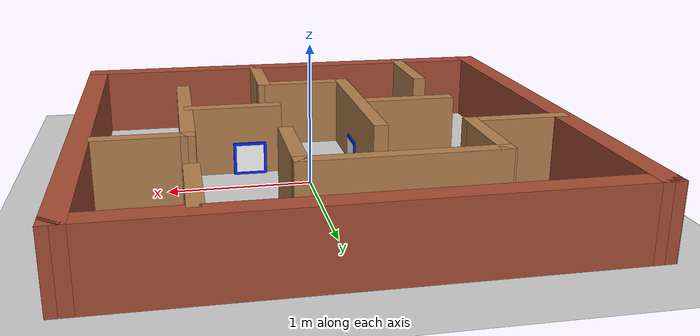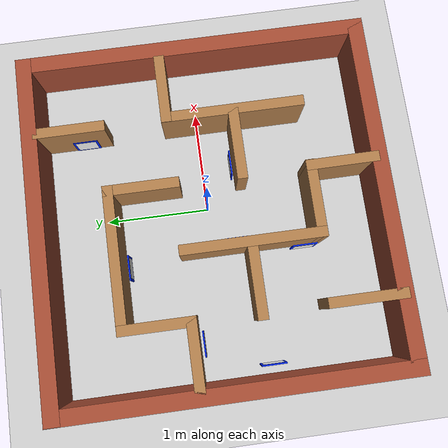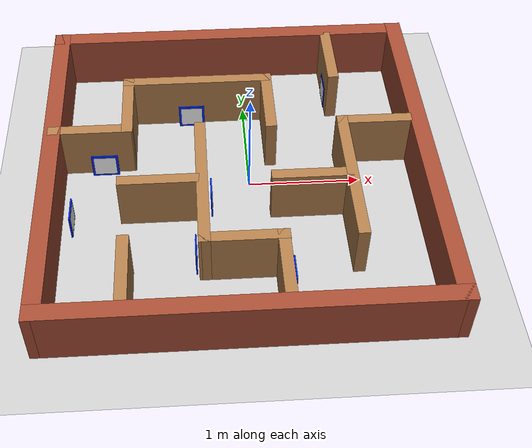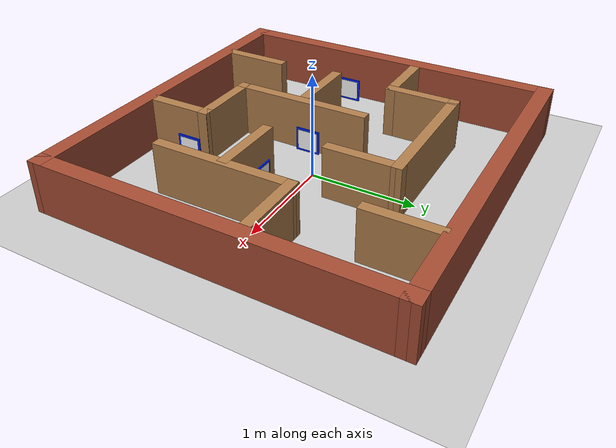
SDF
<sdf version='1.7'>
  <world name='default'>
    <plugin
      filename="gz-sim-physics-system"
      name="gz::sim::systems::Physics">
    </plugin>
    <plugin
      filename="gz-sim-user-commands-system"
      name="gz::sim::systems::UserCommands">
    </plugin>
    <plugin
      filename="gz-sim-scene-broadcaster-system"
      name="gz::sim::systems::SceneBroadcaster">
    </plugin>
    <plugin
      filename="gz-sim-sensors-system"
      name="gz::sim::systems::Sensors">
      <render_engine>ogre2</render_engine>
    </plugin>
    <model name='ground_plane'>
      <static>1</static>
      <pose>0.000 0.000 0.000 0.00 0.00 0.00</pose>
      <link name='link'>
        <collision name='collision'>
          <geometry>
            <plane>
              <normal>0 0 1</normal>
              <size>100 100</size>
            </plane>
          </geometry>
          <surface>
            <friction>
              <ode>
                <mu>100</mu>
                <mu2>50</mu2>
              </ode>
              <torsional>
                <ode/>
              </torsional>
            </friction>
            <contact>
              <ode/>
            </contact>
            <bounce/>
          </surface>
          <max_contacts>10</max_contacts>
        </collision>
        <visual name='visual'>
          <cast_shadows>0</cast_shadows>
          <geometry>
            <plane>
              <normal>0 0 1</normal>
              <size>100 100</size>
            </plane>
          </geometry>
          <material>
            <script>
              <uri>file://media/materials/scripts/gazebo.material</uri>
              <name>Gazebo/Grey</name>
            </script>
          </material>
        </visual>
        <self_collide>0</self_collide>
        <enable_wind>0</enable_wind>
        <kinematic>0</kinematic>
      </link>
    </model>
    <light name='sun' type='directional'>
      <cast_shadows>1</cast_shadows>
      <pose>0 0 10 0 -0 0</pose>
      <diffuse>0.8 0.8 0.8 1</diffuse>
      <specular>0.2 0.2 0.2 1</specular>
      <attenuation>
        <range>1000</range>
        <constant>0.9</constant>
        <linear>0.01</linear>
        <quadratic>0.001</quadratic>
      </attenuation>
      <direction>-0.5 0.1 -0.9</direction>
      <spot>
        <inner_angle>0</inner_angle>
        <outer_angle>0</outer_angle>
        <falloff>0</falloff>
      </spot>
    </light>
    <scene>
      <shadows>0</shadows>
      <ambient>0.4 0.4 0.4 1</ambient>
      <background>0.7 0.7 0.7 1</background>
    </scene>
    <gui fullscreen='0'>
      <camera name='user_camera'>
        <pose>-0.105924 0.043074 8.14068 0 1.5138 0.009599</pose>
        <view_controller>orbit</view_controller>
        <projection_type>perspective</projection_type>
      </camera>
    </gui>
    <physics type='ode'>
      <real_time_update_rate>1000</real_time_update_rate>
      <max_step_size>0.001</max_step_size>
      <real_time_factor>1</real_time_factor>
      <ode>
        <solver>
          <type>quick</type>
          <iters>150</iters>
          <precon_iters>0</precon_iters>
          <sor>1.4</sor>
          <use_dynamic_moi_rescaling>1</use_dynamic_moi_rescaling>
        </solver>
        <constraints>
          <cfm>1e-05</cfm>
          <erp>0.2</erp>
          <contact_max_correcting_vel>2000</contact_max_correcting_vel>
          <contact_surface_layer>0.01</contact_surface_layer>
        </constraints>
      </ode>
    </physics>
    <gravity>0 0 -9.8</gravity>
    <magnetic_field>6e-06 2.3e-05 -4.2e-05</magnetic_field>
    <atmosphere type='adiabatic'/>
    <audio>
      <device>default</device>
    </audio>
    <wind/>
    <spherical_coordinates>
      <surface_model>EARTH_WGS84</surface_model>
      <latitude_deg>0</latitude_deg>
      <longitude_deg>0</longitude_deg>
      <elevation>0</elevation>
      <heading_deg>0</heading_deg>
    </spherical_coordinates>
    <model name='mapcorreg'>
      <model name='newmap'>
        <pose>0 0 0 0 -0 0</pose>
        <link name='Wall_11'>
          <collision name='Wall_11_Collision'>
            <geometry>
              <box>
                <size>3.40462 0.15 0.5</size>
              </box>
            </geometry>
            <pose>0 0 0.25 0 -0 0</pose>
            <max_contacts>10</max_contacts>
            <surface>
              <contact>
                <ode/>
              </contact>
              <bounce/>
              <friction>
                <torsional>
                  <ode/>
                </torsional>
                <ode/>
              </friction>
            </surface>
          </collision>
          <visual name='Wall_11_Visual'>
            <pose>0 0 0.25 0 -0 0</pose>
            <geometry>
              <box>
                <size>3.40462 0.15 0.5</size>
              </box>
            </geometry>
            <material>
              <script>
                <uri>file://media/materials/scripts/gazebo.material</uri>
                <name>Gazebo/Bricks</name>
              </script>
              <ambient>1 1 1 1</ambient>
            </material>
            <meta>
              <layer>0</layer>
            </meta>
          </visual>
          <pose>-1.64015 -0.000466 0 0 -0 -1.56953</pose>
          <self_collide>0</self_collide>
          <enable_wind>0</enable_wind>
          <kinematic>0</kinematic>
        </link>
        <link name='Wall_14'>
          <collision name='Wall_14_Collision'>
            <geometry>
              <box>
                <size>3.40557 0.15 0.5</size>
              </box>
            </geometry>
            <pose>0 0 0.25 0 -0 0</pose>
            <max_contacts>10</max_contacts>
            <surface>
              <contact>
                <ode/>
              </contact>
              <bounce/>
              <friction>
                <torsional>
                  <ode/>
                </torsional>
                <ode/>
              </friction>
            </surface>
          </collision>
          <visual name='Wall_14_Visual'>
            <pose>0 0 0.25 0 -0 0</pose>
            <geometry>
              <box>
                <size>3.40557 0.15 0.5</size>
              </box>
            </geometry>
            <material>
              <script>
                <uri>file://media/materials/scripts/gazebo.material</uri>
                <name>Gazebo/Bricks</name>
              </script>
              <ambient>1 1 1 1</ambient>
            </material>
            <meta>
              <layer>0</layer>
            </meta>
          </visual>
          <pose>1.64026 -0 0 0 -0 1.5696</pose>
          <self_collide>0</self_collide>
          <enable_wind>0</enable_wind>
          <kinematic>0</kinematic>
        </link>
        <link name='Wall_15'>
          <collision name='Wall_15_Collision'>
            <geometry>
              <box>
                <size>3.4301 0.15 0.5</size>
              </box>
            </geometry>
            <pose>0 0 0.25 0 -0 0</pose>
            <max_contacts>10</max_contacts>
            <surface>
              <contact>
                <ode/>
              </contact>
              <bounce/>
              <friction>
                <torsional>
                  <ode/>
                </torsional>
                <ode/>
              </friction>
            </surface>
          </collision>
          <visual name='Wall_15_Visual'>
            <pose>0 0 0.25 0 -0 0</pose>
            <geometry>
              <box>
                <size>3.4301 0.15 0.5</size>
              </box>
            </geometry>
            <material>
              <script>
                <uri>file://media/materials/scripts/gazebo.material</uri>
                <name>Gazebo/Bricks</name>
              </script>
              <ambient>1 1 1 1</ambient>
            </material>
            <meta>
              <layer>0</layer>
            </meta>
          </visual>
          <pose>0.002164 1.62731 0 0 -0 -3.14131</pose>
          <self_collide>0</self_collide>
          <enable_wind>0</enable_wind>
          <kinematic>0</kinematic>
        </link>
        <link name='Wall_17'>
          <collision name='Wall_17_Collision'>
            <geometry>
              <box>
                <size>0.752829 0.1 0.5</size>
              </box>
            </geometry>
            <pose>0 0 0.25 0 -0 0</pose>
            <max_contacts>10</max_contacts>
            <surface>
              <contact>
                <ode/>
              </contact>
              <bounce/>
              <friction>
                <torsional>
                  <ode/>
                </torsional>
                <ode/>
              </friction>
            </surface>
          </collision>
          <visual name='Wall_17_Visual'>
            <pose>0 0 0.25 0 -0 0</pose>
            <geometry>
              <box>
                <size>0.752829 0.1 0.5</size>
              </box>
            </geometry>
            <material>
              <script>
                <uri>file://media/materials/scripts/gazebo.material</uri>
                <name>Gazebo/Wood</name>
              </script>
              <ambient>1 1 1 1</ambient>
            </material>
            <meta>
              <layer>0</layer>
            </meta>
          </visual>
          <pose>-1.30426 0.31789 0 0 -0 0.000206</pose>
          <self_collide>0</self_collide>
          <enable_wind>0</enable_wind>
          <kinematic>0</kinematic>
        </link>
        <link name='Wall_19'>
          <collision name='Wall_19_Collision'>
            <geometry>
              <box>
                <size>0.725857 0.1 0.5</size>
              </box>
            </geometry>
            <pose>0 0 0.25 0 -0 0</pose>
            <max_contacts>10</max_contacts>
            <surface>
              <contact>
                <ode/>
              </contact>
              <bounce/>
              <friction>
                <torsional>
                  <ode/>
                </torsional>
                <ode/>
              </friction>
            </surface>
          </collision>
          <visual name='Wall_19_Visual'>
            <pose>0 0 0.25 0 -0 0</pose>
            <geometry>
              <box>
                <size>0.725857 0.1 0.5</size>
              </box>
            </geometry>
            <material>
              <script>
                <uri>file://media/materials/scripts/gazebo.material</uri>
                <name>Gazebo/Wood</name>
              </script>
              <ambient>1 1 1 1</ambient>
            </material>
            <meta>
              <layer>0</layer>
            </meta>
          </visual>
          <pose>-0.977516 0.630957 0 0 -0 1.5692</pose>
          <self_collide>0</self_collide>
          <enable_wind>0</enable_wind>
          <kinematic>0</kinematic>
        </link>
        <link name='Wall_21'>
          <collision name='Wall_21_Collision'>
            <geometry>
              <box>
                <size>1.38594 0.1 0.5</size>
              </box>
            </geometry>
            <pose>0 0 0.25 0 -0 0</pose>
            <max_contacts>10</max_contacts>
            <surface>
              <contact>
                <ode/>
              </contact>
              <bounce/>
              <friction>
                <torsional>
                  <ode/>
                </torsional>
                <ode/>
              </friction>
            </surface>
          </collision>
          <visual name='Wall_21_Visual'>
            <pose>0 0 0.25 0 -0 0</pose>
            <geometry>
              <box>
                <size>1.38594 0.1 0.5</size>
              </box>
            </geometry>
            <material>
              <script>
                <uri>file://media/materials/scripts/gazebo.material</uri>
                <name>Gazebo/Wood</name>
              </script>
              <ambient>1 1 1 1</ambient>
            </material>
            <meta>
              <layer>0</layer>
            </meta>
          </visual>
          <pose>-0.334045 0.944184 0 0 -0 0.000352</pose>
          <self_collide>0</self_collide>
          <enable_wind>0</enable_wind>
          <kinematic>0</kinematic>
        </link>
        <link name='Wall_22'>
          <collision name='Wall_22_Collision'>
            <geometry>
              <box>
                <size>0.725455 0.1 0.5</size>
              </box>
            </geometry>
            <pose>0 0 0.25 0 -0 0</pose>
            <max_contacts>10</max_contacts>
            <surface>
              <contact>
                <ode/>
              </contact>
              <bounce/>
              <friction>
                <torsional>
                  <ode/>
                </torsional>
                <ode/>
              </friction>
            </surface>
          </collision>
          <visual name='Wall_22_Visual'>
            <pose>0 0 0.25 0 -0 0</pose>
            <geometry>
              <box>
                <size>0.725455 0.1 0.5</size>
              </box>
            </geometry>
            <material>
              <script>
                <uri>file://media/materials/scripts/gazebo.material</uri>
                <name>Gazebo/Wood</name>
              </script>
              <ambient>1 1 1 1</ambient>
            </material>
            <meta>
              <layer>0</layer>
            </meta>
          </visual>
          <pose>0.308926 0.631721 0 0 -0 -1.5708</pose>
          <self_collide>0</self_collide>
          <enable_wind>0</enable_wind>
          <kinematic>0</kinematic>
        </link>
        <link name='Wall_24'>
          <collision name='Wall_24_Collision'>
            <geometry>
              <box>
                <size>0.687721 0.1 0.5</size>
              </box>
            </geometry>
            <pose>0 0 0.25 0 -0 0</pose>
            <max_contacts>10</max_contacts>
            <surface>
              <contact>
                <ode/>
              </contact>
              <bounce/>
              <friction>
                <torsional>
                  <ode/>
                </torsional>
                <ode/>
              </friction>
            </surface>
          </collision>
          <visual name='Wall_24_Visual'>
            <pose>0 0 0.25 0 -0 0</pose>
            <geometry>
              <box>
                <size>0.687721 0.1 0.5</size>
              </box>
            </geometry>
            <material>
              <script>
                <uri>file://media/materials/scripts/gazebo.material</uri>
                <name>Gazebo/Wood</name>
              </script>
              <ambient>1 1 1 1</ambient>
            </material>
            <meta>
              <layer>0</layer>
            </meta>
          </visual>
          <pose>0.947339 1.2511 0 0 -0 1.57201</pose>
          <self_collide>0</self_collide>
          <enable_wind>0</enable_wind>
          <kinematic>0</kinematic>
        </link>
        <link name='Wall_28'>
          <collision name='Wall_28_Collision'>
            <geometry>
              <box>
                <size>0.745 0.1 0.5</size>
              </box>
            </geometry>
            <pose>0 0 0.25 0 -0 0</pose>
            <max_contacts>10</max_contacts>
            <surface>
              <contact>
                <ode/>
              </contact>
              <bounce/>
              <friction>
                <torsional>
                  <ode/>
                </torsional>
                <ode/>
              </friction>
            </surface>
          </collision>
          <visual name='Wall_28_Visual'>
            <pose>0 0 0.25 0 -0 0</pose>
            <geometry>
              <box>
                <size>0.745 0.1 0.5</size>
              </box>
            </geometry>
            <material>
              <script>
                <uri>file://media/materials/scripts/gazebo.material</uri>
                <name>Gazebo/Wood</name>
              </script>
              <ambient>1 1 1 1</ambient>
            </material>
            <meta>
              <layer>0</layer>
            </meta>
          </visual>
          <pose>-0.979016 -1.29154 0 0 -0 1.5708</pose>
          <self_collide>0</self_collide>
          <enable_wind>0</enable_wind>
          <kinematic>0</kinematic>
        </link>
        <link name='Wall_31'>
          <collision name='Wall_31_Collision'>
            <geometry>
              <box>
                <size>0.675002 0.1 0.5</size>
              </box>
            </geometry>
            <pose>0 0 0.25 0 -0 0</pose>
            <max_contacts>10</max_contacts>
            <surface>
              <contact>
                <ode/>
              </contact>
              <bounce/>
              <friction>
                <torsional>
                  <ode/>
                </torsional>
                <ode/>
              </friction>
            </surface>
          </collision>
          <visual name='Wall_31_Visual'>
            <pose>0 0 0.25 0 -0 0</pose>
            <geometry>
              <box>
                <size>0.675002 0.1 0.5</size>
              </box>
            </geometry>
            <material>
              <script>
                <uri>file://media/materials/scripts/gazebo.material</uri>
                <name>Gazebo/Wood</name>
              </script>
              <ambient>1 1 1 1</ambient>
            </material>
            <meta>
              <layer>0</layer>
            </meta>
          </visual>
          <pose>1.24148 0.319709 0 0 -0 -0.002614</pose>
          <self_collide>0</self_collide>
          <enable_wind>0</enable_wind>
          <kinematic>0</kinematic>
        </link>
        <link name='Wall_33'>
          <collision name='Wall_33_Collision'>
            <geometry>
              <box>
                <size>1.38128 0.1 0.5</size>
              </box>
            </geometry>
            <pose>0 0 0.25 0 -0 0</pose>
            <max_contacts>10</max_contacts>
            <surface>
              <contact>
                <ode/>
              </contact>
              <bounce/>
              <friction>
                <torsional>
                  <ode/>
                </torsional>
                <ode/>
              </friction>
            </surface>
          </collision>
          <visual name='Wall_33_Visual'>
            <pose>0 0 0.25 0 -0 0</pose>
            <geometry>
              <box>
                <size>1.38128 0.1 0.5</size>
              </box>
            </geometry>
            <material>
              <script>
                <uri>file://media/materials/scripts/gazebo.material</uri>
                <name>Gazebo/Wood</name>
              </script>
              <ambient>1 1 1 1</ambient>
            </material>
            <meta>
              <layer>0</layer>
            </meta>
          </visual>
          <pose>0.950833 -0.320178 0 0 -0 -1.57061</pose>
          <self_collide>0</self_collide>
          <enable_wind>0</enable_wind>
          <kinematic>0</kinematic>
        </link>
        <link name='Wall_35'>
          <collision name='Wall_35_Collision'>
            <geometry>
              <box>
                <size>0.7 0.1 0.5</size>
              </box>
            </geometry>
            <pose>0 0 0.25 0 -0 0</pose>
            <max_contacts>10</max_contacts>
            <surface>
              <contact>
                <ode/>
              </contact>
              <bounce/>
              <friction>
                <torsional>
                  <ode/>
                </torsional>
                <ode/>
              </friction>
            </surface>
          </collision>
          <visual name='Wall_35_Visual'>
            <pose>0 0 0.25 0 -0 0</pose>
            <geometry>
              <box>
                <size>0.7 0.1 0.5</size>
              </box>
            </geometry>
            <material>
              <script>
                <uri>file://media/materials/scripts/gazebo.material</uri>
                <name>Gazebo/Wood</name>
              </script>
              <ambient>1 1 1 1</ambient>
            </material>
            <meta>
              <layer>0</layer>
            </meta>
          </visual>
          <pose>0.611293 -0.323043 0 0 -0 3.14159</pose>
          <self_collide>0</self_collide>
          <enable_wind>0</enable_wind>
          <kinematic>0</kinematic>
        </link>
        <link name='Wall_37'>
          <collision name='Wall_37_Collision'>
            <geometry>
              <box>
                <size>0.700009 0.1 0.5</size>
              </box>
            </geometry>
            <pose>0 0 0.25 0 -0 0</pose>
            <max_contacts>10</max_contacts>
            <surface>
              <contact>
                <ode/>
              </contact>
              <bounce/>
              <friction>
                <torsional>
                  <ode/>
                </torsional>
                <ode/>
              </friction>
            </surface>
          </collision>
          <visual name='Wall_37_Visual'>
            <pose>0 0 0.25 0 -0 0</pose>
            <geometry>
              <box>
                <size>0.700009 0.1 0.5</size>
              </box>
            </geometry>
            <material>
              <script>
                <uri>file://media/materials/scripts/gazebo.material</uri>
                <name>Gazebo/Wood</name>
              </script>
              <ambient>1 1 1 1</ambient>
            </material>
            <meta>
              <layer>0</layer>
            </meta>
          </visual>
          <pose>0.309349 -1.27704 0 0 -0 -1.56535</pose>
          <self_collide>0</self_collide>
          <enable_wind>0</enable_wind>
          <kinematic>0</kinematic>
        </link>
        <link name='Wall_39'>
          <collision name='Wall_39_Collision'>
            <geometry>
              <box>
                <size>0.741335 0.1 0.5</size>
              </box>
            </geometry>
            <pose>0 0 0.25 0 -0 0</pose>
            <max_contacts>10</max_contacts>
            <surface>
              <contact>
                <ode/>
              </contact>
              <bounce/>
              <friction>
                <torsional>
                  <ode/>
                </torsional>
                <ode/>
              </friction>
            </surface>
          </collision>
          <visual name='Wall_39_Visual'>
            <pose>0 0 0.25 0 -0 0</pose>
            <geometry>
              <box>
                <size>0.741335 0.1 0.5</size>
              </box>
            </geometry>
            <material>
              <script>
                <uri>file://media/materials/scripts/gazebo.material</uri>
                <name>Gazebo/Wood</name>
              </script>
              <ambient>1 1 1 1</ambient>
            </material>
            <meta>
              <layer>0</layer>
            </meta>
          </visual>
          <pose>-0.009684 -0.977178 0 0 -0 -3.14117</pose>
          <self_collide>0</self_collide>
          <enable_wind>0</enable_wind>
          <kinematic>0</kinematic>
        </link>
        <link name='Wall_41'>
          <collision name='Wall_41_Collision'>
            <geometry>
              <box>
                <size>1.38197 0.1 0.5</size>
              </box>
            </geometry>
            <pose>0 0 0.25 0 -0 0</pose>
            <max_contacts>10</max_contacts>
            <surface>
              <contact>
                <ode/>
              </contact>
              <bounce/>
              <friction>
                <torsional>
                  <ode/>
                </torsional>
                <ode/>
              </friction>
            </surface>
          </collision>
          <visual name='Wall_41_Visual'>
            <pose>0 0 0.25 0 -0 0</pose>
            <geometry>
              <box>
                <size>1.38197 0.1 0.5</size>
              </box>
            </geometry>
            <material>
              <script>
                <uri>file://media/materials/scripts/gazebo.material</uri>
                <name>Gazebo/Wood</name>
              </script>
              <ambient>1 1 1 1</ambient>
            </material>
            <meta>
              <layer>0</layer>
            </meta>
          </visual>
          <pose>-0.330352 -0.33634 0 0 -0 1.5708</pose>
          <self_collide>0</self_collide>
          <enable_wind>0</enable_wind>
          <kinematic>0</kinematic>
        </link>
        <link name='Wall_43'>
          <collision name='Wall_43_Collision'>
            <geometry>
              <box>
                <size>0.700497 0.1 0.5</size>
              </box>
            </geometry>
            <pose>0 0 0.25 0 -0 0</pose>
            <max_contacts>10</max_contacts>
            <surface>
              <contact>
                <ode/>
              </contact>
              <bounce/>
              <friction>
                <torsional>
                  <ode/>
                </torsional>
                <ode/>
              </friction>
            </surface>
          </collision>
          <visual name='Wall_43_Visual'>
            <pose>0 0 0.25 0 -0 0</pose>
            <geometry>
              <box>
                <size>0.700497 0.1 0.5</size>
              </box>
            </geometry>
            <material>
              <script>
                <uri>file://media/materials/scripts/gazebo.material</uri>
                <name>Gazebo/Wood</name>
              </script>
              <ambient>1 1 1 1</ambient>
            </material>
            <meta>
              <layer>0</layer>
            </meta>
          </visual>
          <pose>-0.700016 -0.323043 0 0 -0 0</pose>
          <self_collide>0</self_collide>
          <enable_wind>0</enable_wind>
          <kinematic>0</kinematic>
        </link>
        <link name='Wall_8'>
          <collision name='Wall_8_Collision'>
            <geometry>
              <box>
                <size>3.42639 0.15 0.5</size>
              </box>
            </geometry>
            <pose>0 0 0.25 0 -0 0</pose>
            <max_contacts>10</max_contacts>
            <surface>
              <contact>
                <ode/>
              </contact>
              <bounce/>
              <friction>
                <torsional>
                  <ode/>
                </torsional>
                <ode/>
              </friction>
            </surface>
          </collision>
          <visual name='Wall_8_Visual'>
            <pose>0 0 0.25 0 -0 0</pose>
            <geometry>
              <box>
                <size>3.42639 0.15 0.5</size>
              </box>
            </geometry>
            <material>
              <script>
                <uri>file://media/materials/scripts/gazebo.material</uri>
                <name>Gazebo/Bricks</name>
              </script>
              <ambient>1 1 1 1</ambient>
            </material>
            <meta>
              <layer>0</layer>
            </meta>
          </visual>
          <pose>0.000106 -1.62777 0 0 -0 0</pose>
          <self_collide>0</self_collide>
          <enable_wind>0</enable_wind>
          <kinematic>0</kinematic>
        </link>
        <static>1</static>
      </model>
      <static>0</static>
      <allow_auto_disable>1</allow_auto_disable>
      <pose>-0.098953 -0.033482 0 0 -0 0</pose>
    </model>

    <!-- simulated_aruco_markers_start -->
    <model name='aruco_70'>
      <static>true</static>
      <pose>-1.300 0.200 0.120 0.00 0.00 -1.57</pose>
      <link name='link'>
        <collision name='collision'>
          <geometry><box><size>0.012 0.24 0.24</size></box></geometry>
        </collision>
        <visual name='blue_backplate'>
          <cast_shadows>0</cast_shadows>
          <geometry><box><size>0.012 0.24 0.24</size></box></geometry>
          <material>
            <ambient>0.0 0.15 1.0 1</ambient>
            <diffuse>0.0 0.15 1.0 1</diffuse>
            <emissive>0.0 0.05 0.4 1</emissive>
          </material>
        </visual>
        <visual name='aruco_texture'>
          <cast_shadows>0</cast_shadows>
          <pose>0.008 0 0 1.5708 0 1.5708</pose>
          <geometry>
            <plane>
              <normal>0 0 1</normal>
              <size>0.20 0.20</size>
            </plane>
          </geometry>
          <material>
            <ambient>1 1 1 1</ambient>
            <diffuse>1 1 1 1</diffuse>
            <specular>1 1 1 1</specular>
            <emissive>0.2 0.2 0.2 1</emissive>
            <pbr>
              <metal>
                <albedo_map>file://worlds/aruco_textures/aruco_70.png</albedo_map>
              </metal>
            </pbr>
          </material>
        </visual>
      </link>
    </model>
    <model name='aruco_706'>
      <static>true</static>
      <pose>-0.500 0.820 0.120 0.00 0.00 -1.57</pose>
      <link name='link'>
        <collision name='collision'>
          <geometry><box><size>0.012 0.24 0.24</size></box></geometry>
        </collision>
        <visual name='blue_backplate'>
          <cast_shadows>0</cast_shadows>
          <geometry><box><size>0.012 0.24 0.24</size></box></geometry>
          <material>
            <ambient>0.0 0.15 1.0 1</ambient>
            <diffuse>0.0 0.15 1.0 1</diffuse>
            <emissive>0.0 0.05 0.4 1</emissive>
          </material>
        </visual>
        <visual name='aruco_texture'>
          <cast_shadows>0</cast_shadows>
          <pose>0.008 0 0 1.5708 0 1.5708</pose>
          <geometry>
            <plane>
              <normal>0 0 1</normal>
              <size>0.20 0.20</size>
            </plane>
          </geometry>
          <material>
            <ambient>1 1 1 1</ambient>
            <diffuse>1 1 1 1</diffuse>
            <specular>1 1 1 1</specular>
            <emissive>0.2 0.2 0.2 1</emissive>
            <pbr>
              <metal>
                <albedo_map>file://worlds/aruco_textures/aruco_706.png</albedo_map>
              </metal>
            </pbr>
          </material>
        </visual>
      </link>
    </model>
    <model name='aruco_75'>
      <static>true</static>
      <pose>0.800 1.120 0.120 0.00 0.00 -3.14</pose>
      <link name='link'>
        <collision name='collision'>
          <geometry><box><size>0.012 0.24 0.24</size></box></geometry>
        </collision>
        <visual name='blue_backplate'>
          <cast_shadows>0</cast_shadows>
          <geometry><box><size>0.012 0.24 0.24</size></box></geometry>
          <material>
            <ambient>0.0 0.15 1.0 1</ambient>
            <diffuse>0.0 0.15 1.0 1</diffuse>
            <emissive>0.0 0.05 0.4 1</emissive>
          </material>
        </visual>
        <visual name='aruco_texture'>
          <cast_shadows>0</cast_shadows>
          <pose>0.008 0 0 1.5708 0 1.5708</pose>
          <geometry>
            <plane>
              <normal>0 0 1</normal>
              <size>0.20 0.20</size>
            </plane>
          </geometry>
          <material>
            <ambient>1 1 1 1</ambient>
            <diffuse>1 1 1 1</diffuse>
            <specular>1 1 1 1</specular>
            <emissive>0.2 0.2 0.2 1</emissive>
            <pbr>
              <metal>
                <albedo_map>file://worlds/aruco_textures/aruco_75.png</albedo_map>
              </metal>
            </pbr>
          </material>
        </visual>
      </link>
    </model>
    <model name='aruco_701'>
      <static>true</static>
      <pose>-1.565 -0.420 0.120 0 0 0.0000</pose>
      <link name='link'>
        <collision name='collision'>
          <geometry><box><size>0.012 0.24 0.24</size></box></geometry>
        </collision>
        <visual name='blue_backplate'>
          <cast_shadows>0</cast_shadows>
          <geometry><box><size>0.012 0.24 0.24</size></box></geometry>
          <material>
            <ambient>0.0 0.15 1.0 1</ambient>
            <diffuse>0.0 0.15 1.0 1</diffuse>
            <emissive>0.0 0.05 0.4 1</emissive>
          </material>
        </visual>
        <visual name='aruco_texture'>
          <cast_shadows>0</cast_shadows>
          <pose>0.008 0 0 1.5708 0 1.5708</pose>
          <geometry>
            <plane>
              <normal>0 0 1</normal>
              <size>0.20 0.20</size>
            </plane>
          </geometry>
          <material>
            <ambient>1 1 1 1</ambient>
            <diffuse>1 1 1 1</diffuse>
            <specular>1 1 1 1</specular>
            <emissive>0.2 0.2 0.2 1</emissive>
            <pbr>
              <metal>
                <albedo_map>file://worlds/aruco_textures/aruco_701.png</albedo_map>
              </metal>
            </pbr>
          </material>
        </visual>
      </link>
    </model>
    <model name='aruco_703'>
      <static>true</static>
      <pose>0.400 -0.280 0.120 0.00 0.00 1.57</pose>
      <link name='link'>
        <collision name='collision'>
          <geometry><box><size>0.012 0.24 0.24</size></box></geometry>
        </collision>
        <visual name='blue_backplate'>
          <cast_shadows>0</cast_shadows>
          <geometry><box><size>0.012 0.24 0.24</size></box></geometry>
          <material>
            <ambient>0.0 0.15 1.0 1</ambient>
            <diffuse>0.0 0.15 1.0 1</diffuse>
            <emissive>0.0 0.05 0.4 1</emissive>
          </material>
        </visual>
        <visual name='aruco_texture'>
          <cast_shadows>0</cast_shadows>
          <pose>0.008 0 0 1.5708 0 1.5708</pose>
          <geometry>
            <plane>
              <normal>0 0 1</normal>
              <size>0.20 0.20</size>
            </plane>
          </geometry>
          <material>
            <ambient>1 1 1 1</ambient>
            <diffuse>1 1 1 1</diffuse>
            <specular>1 1 1 1</specular>
            <emissive>0.2 0.2 0.2 1</emissive>
            <pbr>
              <metal>
                <albedo_map>file://worlds/aruco_textures/aruco_703.png</albedo_map>
              </metal>
            </pbr>
          </material>
        </visual>
      </link>
    </model>
    <model name='aruco_705'>
      <static>true</static>
      <pose>-0.500 -0.880 0.120 0.00 0.00 -3.14</pose>
      <link name='link'>
        <collision name='collision'>
          <geometry><box><size>0.012 0.24 0.24</size></box></geometry>
        </collision>
        <visual name='blue_backplate'>
          <cast_shadows>0</cast_shadows>
          <geometry><box><size>0.012 0.24 0.24</size></box></geometry>
          <material>
            <ambient>0.0 0.15 1.0 1</ambient>
            <diffuse>0.0 0.15 1.0 1</diffuse>
            <emissive>0.0 0.05 0.4 1</emissive>
          </material>
        </visual>
        <visual name='aruco_texture'>
          <cast_shadows>0</cast_shadows>
          <pose>0.008 0 0 1.5708 0 1.5708</pose>
          <geometry>
            <plane>
              <normal>0 0 1</normal>
              <size>0.20 0.20</size>
            </plane>
          </geometry>
          <material>
            <ambient>1 1 1 1</ambient>
            <diffuse>1 1 1 1</diffuse>
            <specular>1 1 1 1</specular>
            <emissive>0.2 0.2 0.2 1</emissive>
            <pbr>
              <metal>
                <albedo_map>file://worlds/aruco_textures/aruco_705.png</albedo_map>
              </metal>
            </pbr>
          </material>
        </visual>
      </link>
    </model>
    <model name='aruco_708'>
      <static>true</static>
      <pose>-0.350 -0.250 0.120 0.00 0.00 0.00</pose>
      <link name='link'>
        <collision name='collision'>
          <geometry><box><size>0.012 0.24 0.24</size></box></geometry>
        </collision>
        <visual name='blue_backplate'>
          <cast_shadows>0</cast_shadows>
          <geometry><box><size>0.012 0.24 0.24</size></box></geometry>
          <material>
            <ambient>0.0 0.15 1.0 1</ambient>
            <diffuse>0.0 0.15 1.0 1</diffuse>
            <emissive>0.0 0.05 0.4 1</emissive>
          </material>
        </visual>
        <visual name='aruco_texture'>
          <cast_shadows>0</cast_shadows>
          <pose>0.008 0 0 1.5708 0 1.5708</pose>
          <geometry>
            <plane>
              <normal>0 0 1</normal>
              <size>0.20 0.20</size>
            </plane>
          </geometry>
          <material>
            <ambient>1 1 1 1</ambient>
            <diffuse>1 1 1 1</diffuse>
            <specular>1 1 1 1</specular>
            <emissive>0.2 0.2 0.2 1</emissive>
            <pbr>
              <metal>
                <albedo_map>file://worlds/aruco_textures/aruco_708.png</albedo_map>
              </metal>
            </pbr>
          </material>
        </visual>
      </link>
    </model>
    <model name='aruco_702'>
      <static>true</static>
      <pose>0.300 -1.150 0.120 0.00 0.00 0.00</pose>
      <link name='link'>
        <collision name='collision'>
          <geometry><box><size>0.012 0.24 0.24</size></box></geometry>
        </collision>
        <visual name='blue_backplate'>
          <cast_shadows>0</cast_shadows>
          <geometry><box><size>0.012 0.24 0.24</size></box></geometry>
          <material>
            <ambient>0.0 0.15 1.0 1</ambient>
            <diffuse>0.0 0.15 1.0 1</diffuse>
            <emissive>0.0 0.05 0.4 1</emissive>
          </material>
        </visual>
        <visual name='aruco_texture'>
          <cast_shadows>0</cast_shadows>
          <pose>0.008 0 0 1.5708 0 1.5708</pose>
          <geometry>
            <plane>
              <normal>0 0 1</normal>
              <size>0.20 0.20</size>
            </plane>
          </geometry>
          <material>
            <ambient>1 1 1 1</ambient>
            <diffuse>1 1 1 1</diffuse>
            <specular>1 1 1 1</specular>
            <emissive>0.2 0.2 0.2 1</emissive>
            <pbr>
              <metal>
                <albedo_map>file://worlds/aruco_textures/aruco_702.png</albedo_map>
              </metal>
            </pbr>
          </material>
        </visual>
      </link>
    </model>
    <!-- simulated_aruco_markers_end -->
  </world>
</sdf>
